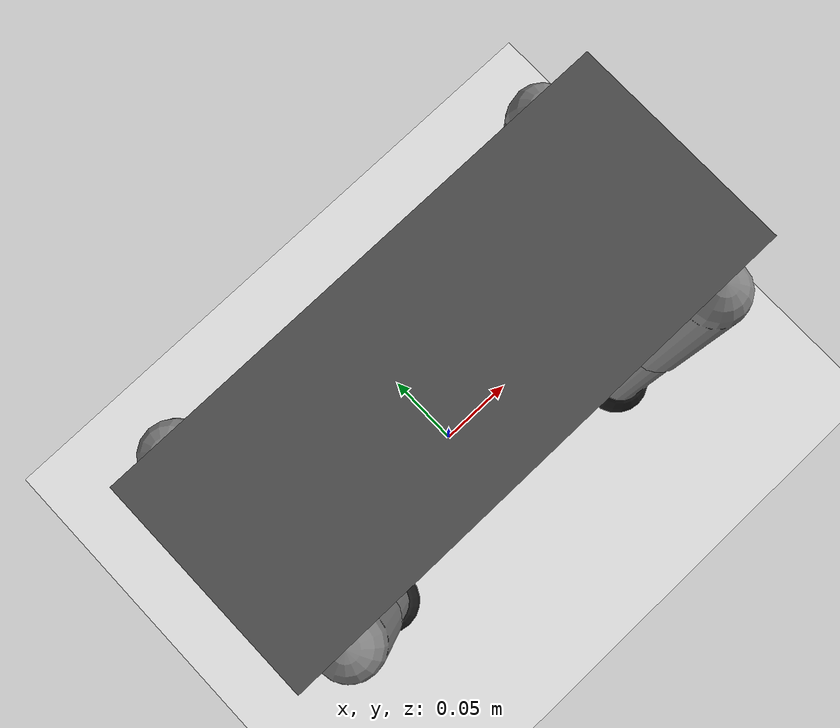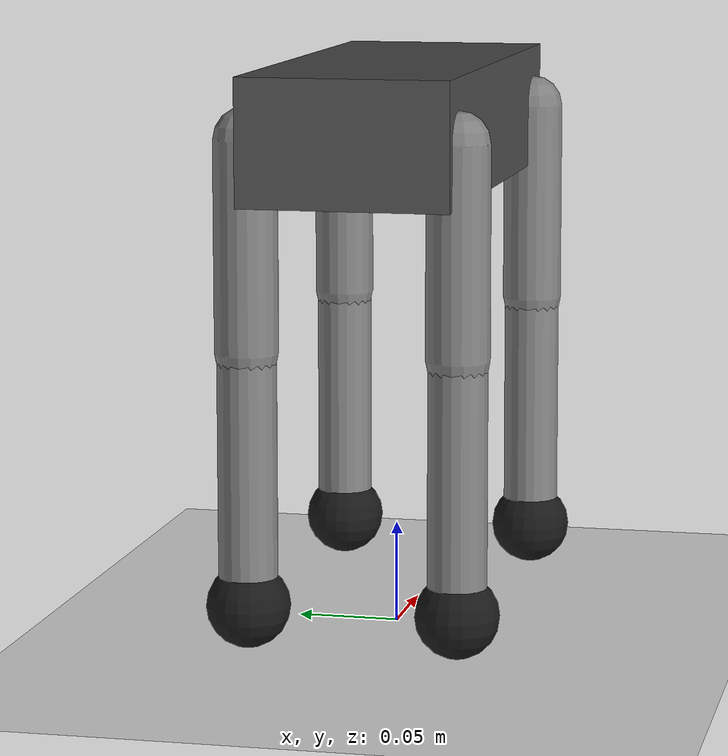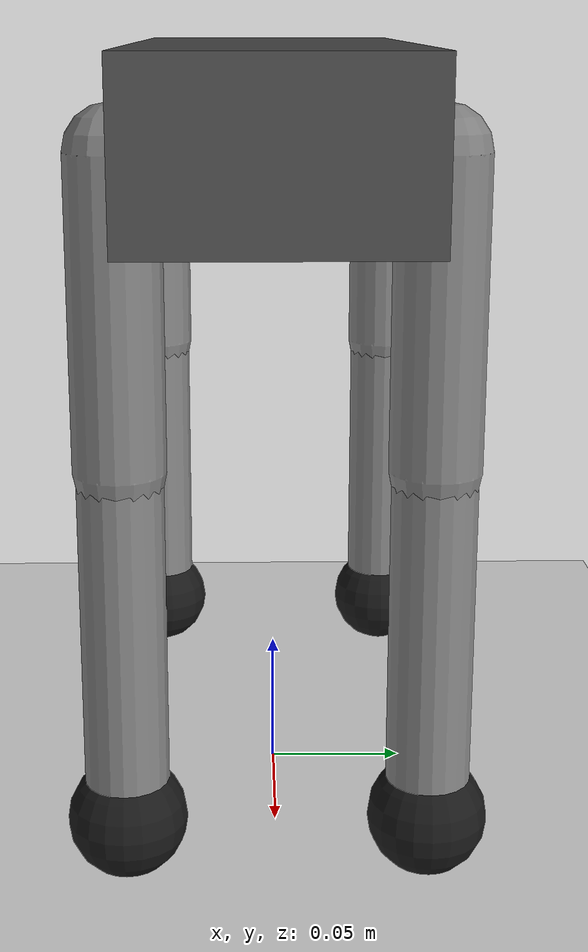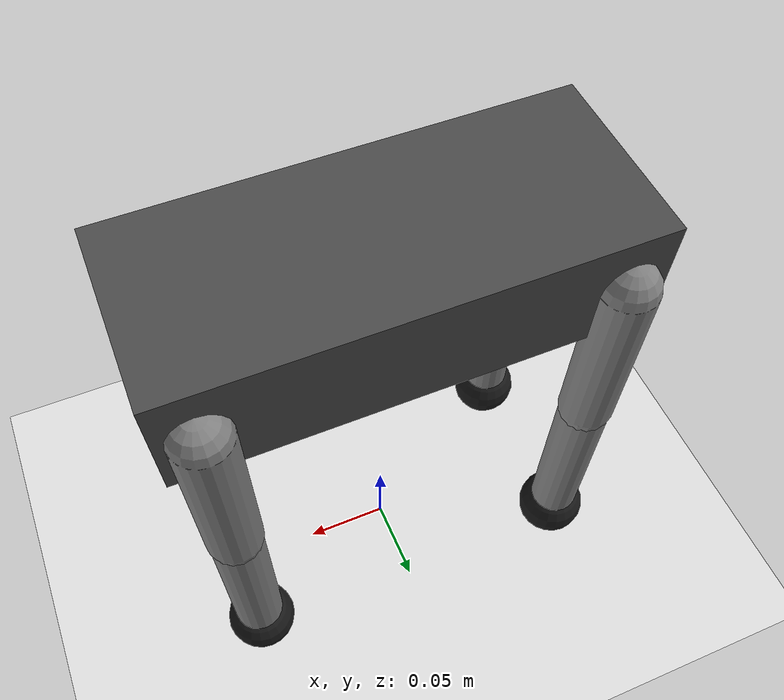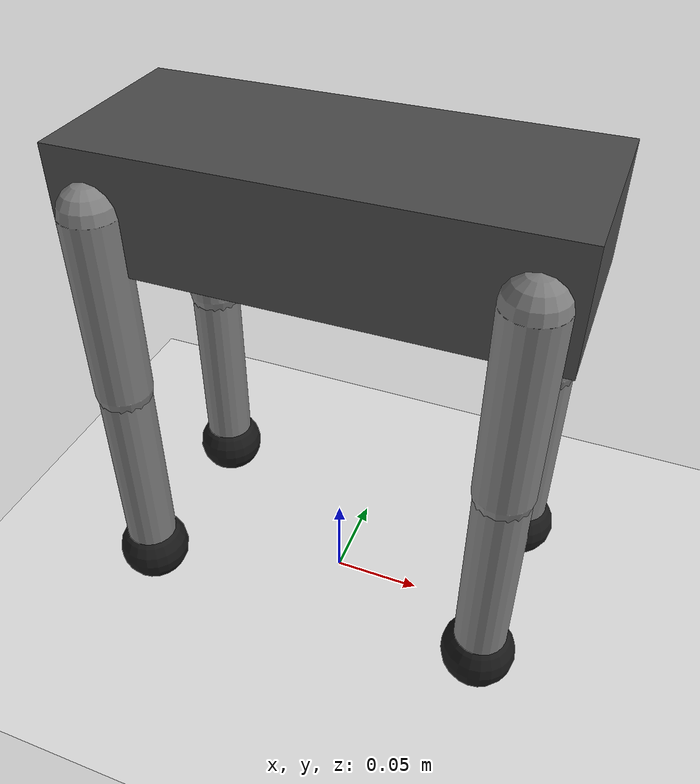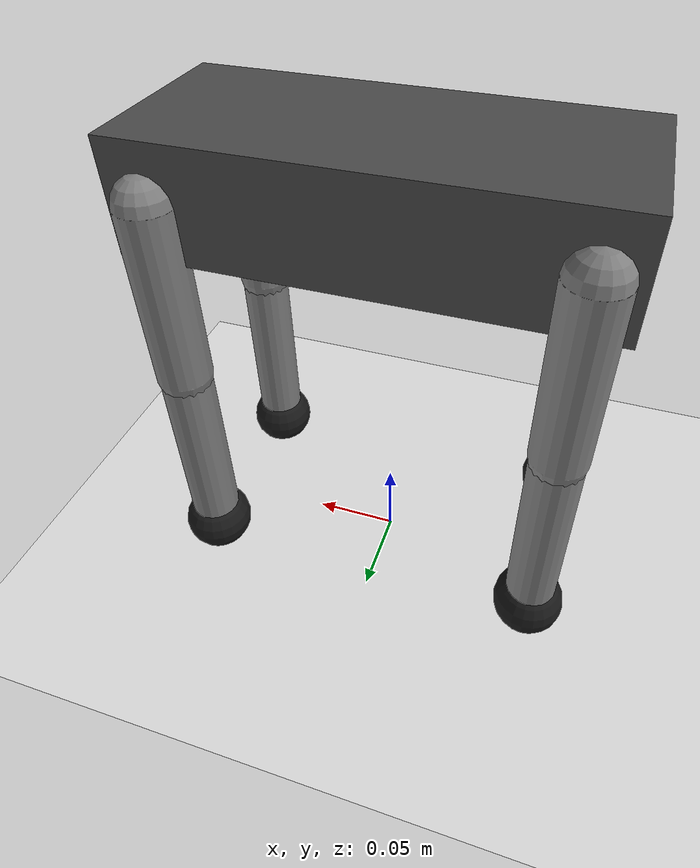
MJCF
<mujoco model="dog">
  <option timestep="0.002" gravity="0 0 -9.81"/>

  <worldbody>
    <light diffuse="1 1 1" pos="0 0 3"/>
    <geom type="plane" size="5 5 0.1" rgba="0.9 0.9 0.9 1"/>

    <!-- Torso -->
    <body name="torso" pos="0 0 0.25">
      <freejoint/>
      <geom type="box" size="0.12 0.05 0.03" rgba="0.3 0.3 0.3 1" mass="2"/>

      <!-- Front Left -->
      <body pos="0.10 0.05 0">
        <joint name="fl_hip" type="hinge" axis="0 1 0" range="-60 60"/>
        <geom type="capsule" fromto="0 0 0 0 0 -0.10" size="0.015" mass="0.2"/>
        <body pos="0 0 -0.10">
          <joint name="fl_knee" type="hinge" axis="0 1 0" range="-90 30"/>
          <geom type="capsule" fromto="0 0 0 0 0 -0.12" size="0.014" mass="0.2"/>
          <geom type="sphere" pos="0 0 -0.12" size="0.02" rgba="0.1 0.1 0.1 1"/>
        </body>
      </body>

      <!-- Front Right -->
      <body pos="0.10 -0.05 0">
        <joint name="fr_hip" type="hinge" axis="0 1 0" range="-60 60"/>
        <geom type="capsule" fromto="0 0 0 0 0 -0.10" size="0.015" mass="0.2"/>
        <body pos="0 0 -0.10">
          <joint name="fr_knee" type="hinge" axis="0 1 0" range="-90 30"/>
          <geom type="capsule" fromto="0 0 0 0 0 -0.12" size="0.014" mass="0.2"/>
          <geom type="sphere" pos="0 0 -0.12" size="0.02" rgba="0.1 0.1 0.1 1"/>
        </body>
      </body>

      <!-- Back Left -->
      <body pos="-0.10 0.05 0">
        <joint name="bl_hip" type="hinge" axis="0 1 0" range="-60 60"/>
        <geom type="capsule" fromto="0 0 0 0 0 -0.10" size="0.015" mass="0.2"/>
        <body pos="0 0 -0.10">
          <joint name="bl_knee" type="hinge" axis="0 1 0" range="-90 30"/>
          <geom type="capsule" fromto="0 0 0 0 0 -0.12" size="0.014" mass="0.2"/>
          <geom type="sphere" pos="0 0 -0.12" size="0.02" rgba="0.1 0.1 0.1 1"/>
        </body>
      </body>

      <!-- Back Right -->
      <body pos="-0.10 -0.05 0">
        <joint name="br_hip" type="hinge" axis="0 1 0" range="-60 60"/>
        <geom type="capsule" fromto="0 0 0 0 0 -0.10" size="0.015" mass="0.2"/>
        <body pos="0 0 -0.10">
          <joint name="br_knee" type="hinge" axis="0 1 0" range="-90 30"/>
          <geom type="capsule" fromto="0 0 0 0 0 -0.12" size="0.014" mass="0.2"/>
          <geom type="sphere" pos="0 0 -0.12" size="0.02" rgba="0.1 0.1 0.1 1"/>
        </body>
      </body>

    </body>
  </worldbody>

  <!-- Torque motors for every joint (±20 Nm) -->
  <actuator>
    <motor joint="fl_hip"  ctrlrange="-20 20" gear="1"/>
    <motor joint="fl_knee" ctrlrange="-20 20" gear="1"/>
    <motor joint="fr_hip"  ctrlrange="-20 20" gear="1"/>
    <motor joint="fr_knee" ctrlrange="-20 20" gear="1"/>
    <motor joint="bl_hip"  ctrlrange="-20 20" gear="1"/>
    <motor joint="bl_knee" ctrlrange="-20 20" gear="1"/>
    <motor joint="br_hip"  ctrlrange="-20 20" gear="1"/>
    <motor joint="br_knee" ctrlrange="-20 20" gear="1"/>
  </actuator>
</mujoco>
